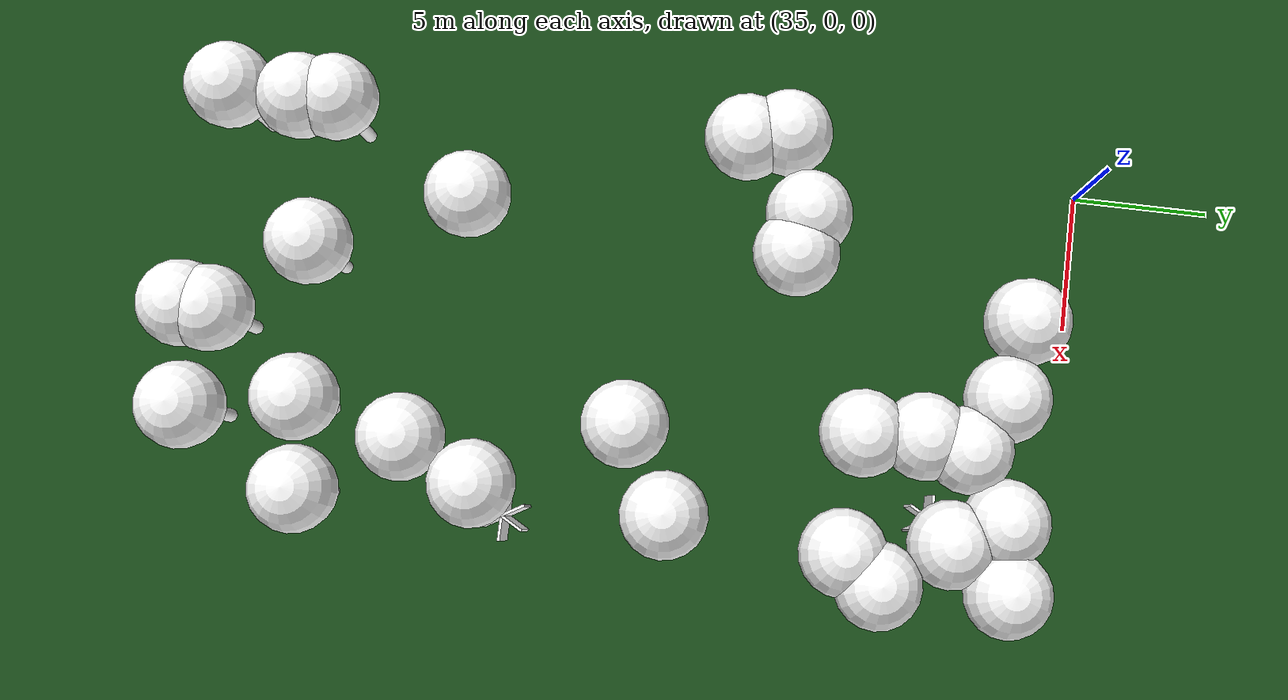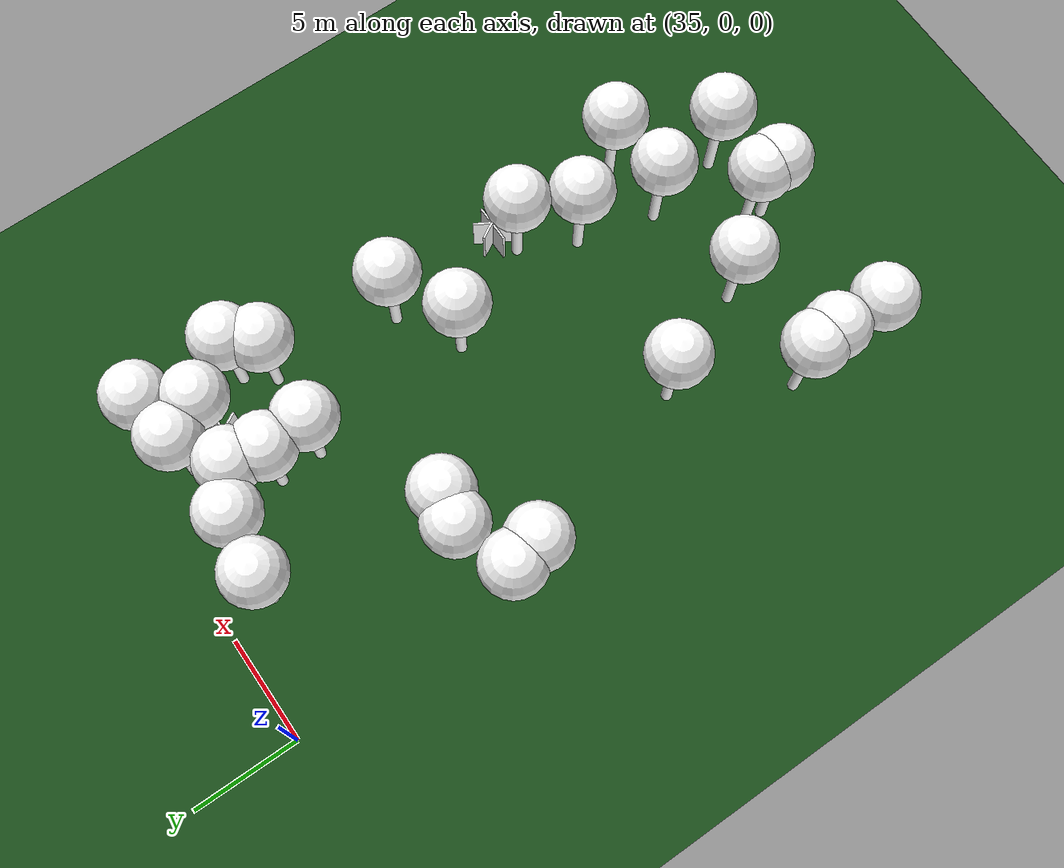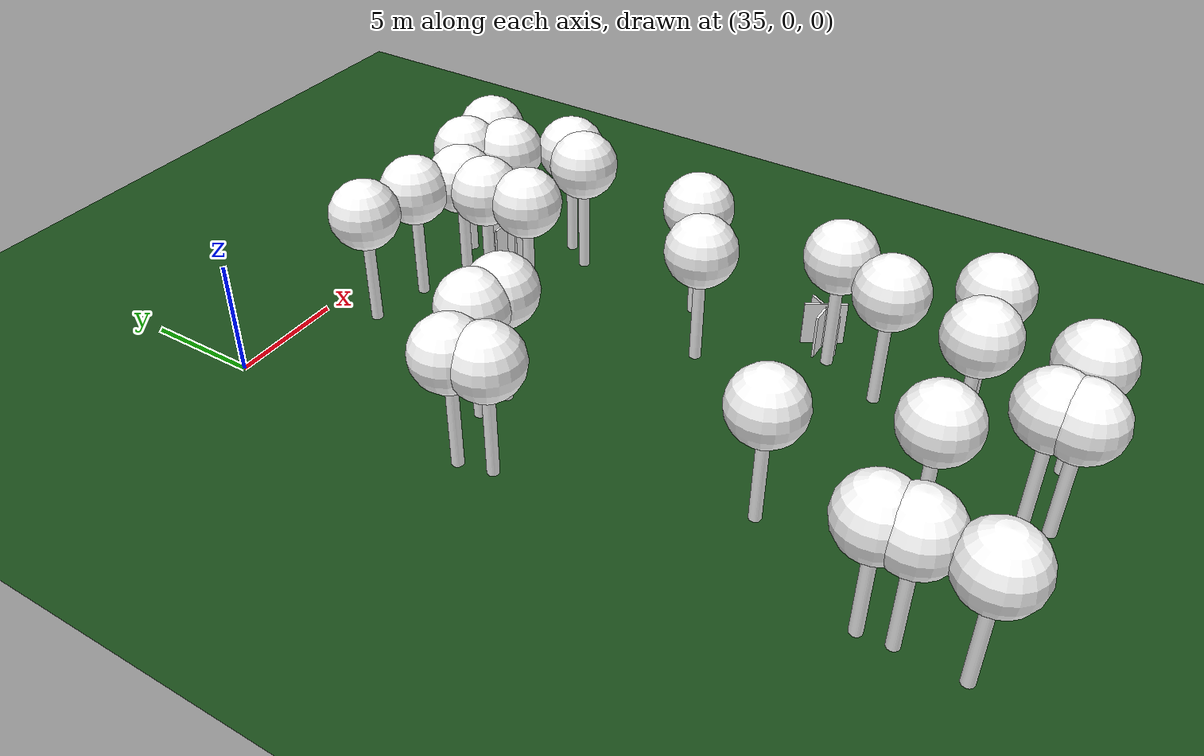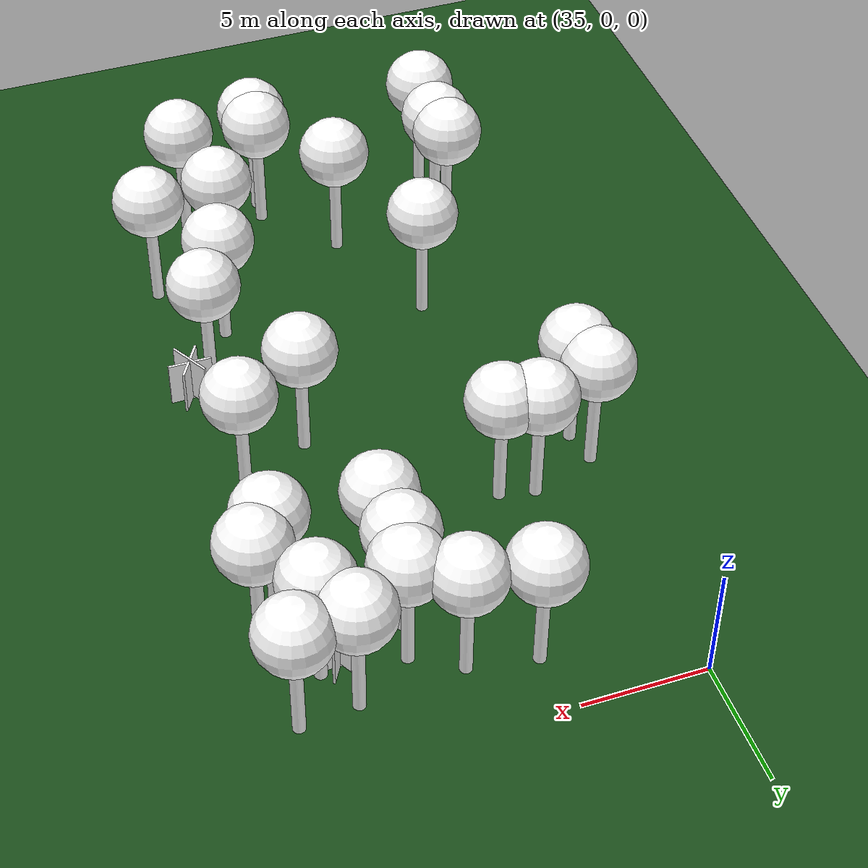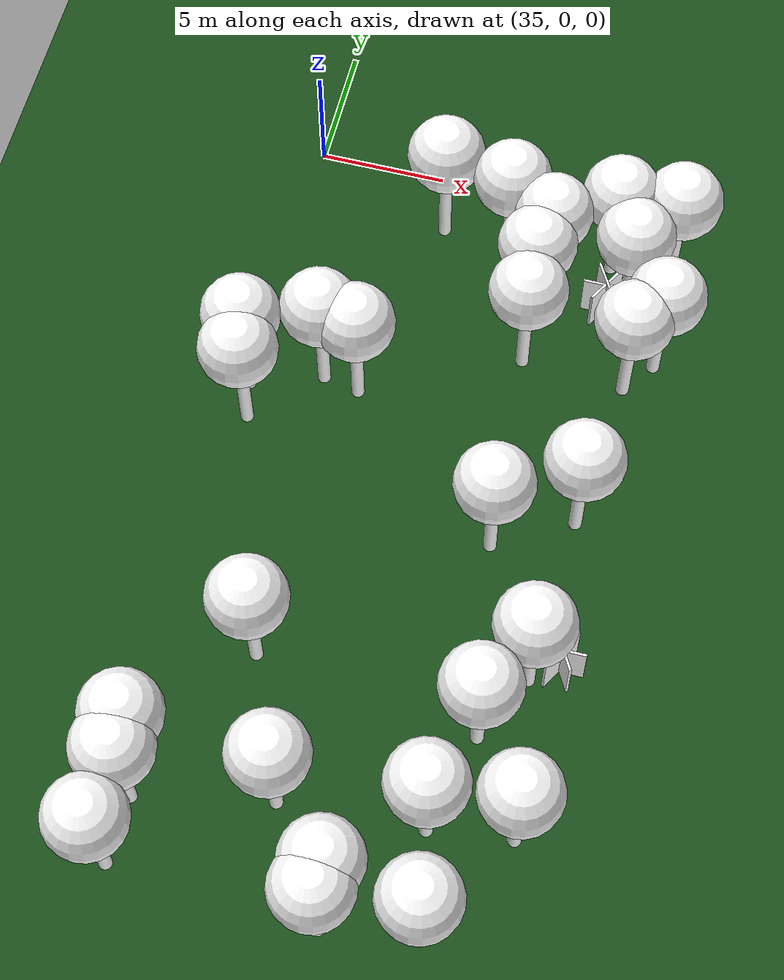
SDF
<sdf version="1.8">
 <world name="forest_world">
  <model name="fire_6">
   <pose>49.12 -19.65 1.00 0 0 0.00</pose>
   <static>true</static>
   <link name="fire_link">
    <visual name="fire_6_fire_main_0">
     <geometry><box><size>1.80 0.10 2.00</size></box></geometry>
     <material>
      <ambient>0.7 0.35 0.0 1</ambient>
      <diffuse>1 1 1 1</diffuse>
      <specular>0 0 0 1</specular>
      <emissive>0 0 0 1</emissive>
      <pbr>
       <metal><albedo_map>textures/fire.png</albedo_map><metalness>0.0</metalness><roughness>0.6</roughness></metal>
      </pbr>
     </material>
     <transparency>0.0</transparency>
     <cast_shadows>false</cast_shadows>
    </visual>
    <visual name="fire_6_fire_60_1">
     <pose>0.00 0.00 0.10 0 0 1.05</pose>
     <geometry><box><size>1.80 0.10 2.00</size></box></geometry>
     <material>
      <ambient>0.7 0.35 0.0 1</ambient>
      <diffuse>1 1 1 1</diffuse>
      <specular>0 0 0 1</specular>
      <emissive>0 0 0 1</emissive>
      <pbr>
       <metal><albedo_map>textures/fire.png</albedo_map><metalness>0.0</metalness><roughness>0.6</roughness></metal>
      </pbr>
     </material>
     <transparency>0.0</transparency>
     <cast_shadows>false</cast_shadows>
    </visual>
    <visual name="fire_6_fire_120_2">
     <pose>0.00 0.00 0.20 0 0 2.09</pose>
     <geometry><box><size>1.80 0.10 2.00</size></box></geometry>
     <material>
      <ambient>0.7 0.35 0.0 1</ambient>
      <diffuse>1 1 1 1</diffuse>
      <specular>0 0 0 1</specular>
      <emissive>0 0 0 1</emissive>
      <pbr>
       <metal><albedo_map>textures/fire.png</albedo_map><metalness>0.0</metalness><roughness>0.6</roughness></metal>
      </pbr>
     </material>
     <transparency>0.0</transparency>
     <cast_shadows>false</cast_shadows>
    </visual>
    <light type="point" name="fire_6_light_0">
     <pose>0.40 0.00 0.50 0 0 0</pose>
     <diffuse>1.0 0.7 0.3 1</diffuse>
     <specular>1.0 0.8 0.3 1</specular>
     <intensity>2</intensity>
     <attenuation>
      <range>2</range>
      <constant>0.1</constant>
      <linear>0.05</linear>
      <quadratic>0.02</quadratic>
     </attenuation>
     <cast_shadows>false</cast_shadows>
    </light>
    <light type="point" name="fire_6_light_1">
     <pose>-0.20 0.35 0.50 0 0 0</pose>
     <diffuse>1.0 0.7 0.3 1</diffuse>
     <specular>1.0 0.8 0.3 1</specular>
     <intensity>2</intensity>
     <attenuation>
      <range>2</range>
      <constant>0.1</constant>
      <linear>0.05</linear>
      <quadratic>0.02</quadratic>
     </attenuation>
     <cast_shadows>false</cast_shadows>
    </light>
    <light type="point" name="fire_6_light_2">
     <pose>-0.20 -0.35 0.50 0 0 0</pose>
     <diffuse>1.0 0.7 0.3 1</diffuse>
     <specular>1.0 0.8 0.3 1</specular>
     <intensity>2</intensity>
     <attenuation>
      <range>2</range>
      <constant>0.1</constant>
      <linear>0.05</linear>
      <quadratic>0.02</quadratic>
     </attenuation>
     <cast_shadows>false</cast_shadows>
    </light>
   </link>
   <plugin filename="libignition-gazebo-pose-publisher-system.so" name="ignition::gazebo::systems::PosePublisher">
    <frame_id>world</frame_id>
    <publish_link_pose>true</publish_link_pose>
    <use_pose_vector_msg>true</use_pose_vector_msg>
    <static_publisher>true</static_publisher>
    <static_update_frequency>1</static_update_frequency>
   </plugin>
  </model>
  <model name="fire_21">
   <pose>47.58 -4.49 1.00 0 0 0.00</pose>
   <static>true</static>
   <link name="fire_link">
    <visual name="fire_21_fire_main_0">
     <geometry><box><size>1.80 0.10 2.00</size></box></geometry>
     <material>
      <ambient>0.7 0.35 0.0 1</ambient>
      <diffuse>1 1 1 1</diffuse>
      <specular>0 0 0 1</specular>
      <emissive>0 0 0 1</emissive>
      <pbr>
       <metal><albedo_map>textures/fire.png</albedo_map><metalness>0.0</metalness><roughness>0.6</roughness></metal>
      </pbr>
     </material>
     <transparency>0.0</transparency>
     <cast_shadows>false</cast_shadows>
    </visual>
    <visual name="fire_21_fire_60_1">
     <pose>0.00 0.00 0.10 0 0 1.05</pose>
     <geometry><box><size>1.80 0.10 2.00</size></box></geometry>
     <material>
      <ambient>0.7 0.35 0.0 1</ambient>
      <diffuse>1 1 1 1</diffuse>
      <specular>0 0 0 1</specular>
      <emissive>0 0 0 1</emissive>
      <pbr>
       <metal><albedo_map>textures/fire.png</albedo_map><metalness>0.0</metalness><roughness>0.6</roughness></metal>
      </pbr>
     </material>
     <transparency>0.0</transparency>
     <cast_shadows>false</cast_shadows>
    </visual>
    <visual name="fire_21_fire_120_2">
     <pose>0.00 0.00 0.20 0 0 2.09</pose>
     <geometry><box><size>1.80 0.10 2.00</size></box></geometry>
     <material>
      <ambient>0.7 0.35 0.0 1</ambient>
      <diffuse>1 1 1 1</diffuse>
      <specular>0 0 0 1</specular>
      <emissive>0 0 0 1</emissive>
      <pbr>
       <metal><albedo_map>textures/fire.png</albedo_map><metalness>0.0</metalness><roughness>0.6</roughness></metal>
      </pbr>
     </material>
     <transparency>0.0</transparency>
     <cast_shadows>false</cast_shadows>
    </visual>
    <light type="point" name="fire_21_light_0">
     <pose>0.40 0.00 0.50 0 0 0</pose>
     <diffuse>1.0 0.7 0.3 1</diffuse>
     <specular>1.0 0.8 0.3 1</specular>
     <intensity>2</intensity>
     <attenuation>
      <range>2</range>
      <constant>0.1</constant>
      <linear>0.05</linear>
      <quadratic>0.02</quadratic>
     </attenuation>
     <cast_shadows>false</cast_shadows>
    </light>
    <light type="point" name="fire_21_light_1">
     <pose>-0.20 0.35 0.50 0 0 0</pose>
     <diffuse>1.0 0.7 0.3 1</diffuse>
     <specular>1.0 0.8 0.3 1</specular>
     <intensity>2</intensity>
     <attenuation>
      <range>2</range>
      <constant>0.1</constant>
      <linear>0.05</linear>
      <quadratic>0.02</quadratic>
     </attenuation>
     <cast_shadows>false</cast_shadows>
    </light>
    <light type="point" name="fire_21_light_2">
     <pose>-0.20 -0.35 0.50 0 0 0</pose>
     <diffuse>1.0 0.7 0.3 1</diffuse>
     <specular>1.0 0.8 0.3 1</specular>
     <intensity>2</intensity>
     <attenuation>
      <range>2</range>
      <constant>0.1</constant>
      <linear>0.05</linear>
      <quadratic>0.02</quadratic>
     </attenuation>
     <cast_shadows>false</cast_shadows>
    </light>
   </link>
   <plugin filename="libignition-gazebo-pose-publisher-system.so" name="ignition::gazebo::systems::PosePublisher">
    <frame_id>world</frame_id>
    <publish_link_pose>true</publish_link_pose>
    <use_pose_vector_msg>true</use_pose_vector_msg>
    <static_publisher>true</static_publisher>
    <static_update_frequency>1</static_update_frequency>
   </plugin>
  </model>
  <model name="tree_simple473">
   <static>1</static>
   <link name="link">
    <pose>0 0 0.1 0 -0 0</pose>
    <collision name="collision_trunk">
     <pose>0 0 2 0 -0 0</pose>
     <geometry><cylinder><radius>0.25</radius><length>4</length></cylinder></geometry>
    </collision>
    <collision name="collision_treetop">
     <pose>0 0 5.2 0 -0 0</pose>
     <geometry><sphere><radius>1.5</radius></sphere></geometry>
    </collision>
    <visual name="trunk">
     <pose>0 0 2 0 -0 0</pose>
     <geometry><cylinder><radius>0.25</radius><length>4</length></cylinder></geometry>
     <material>
      <ambient>0.5 0.5 0.5 1</ambient>
      <diffuse>1.0 1.0 1.0 1</diffuse>
      <specular>0.0 0.0 0.0 1</specular>
      <pbr>
       <metal>
        <albedo_map>../worlds/textures/tree_simple_trunk.jpg</albedo_map>
        <metalness>0.0</metalness>
        <roughness>0.8</roughness>
       </metal>
      </pbr>
     </material>
    </visual>
    <visual name="treetop">
     <pose>0 0 5.2 0 -0 0</pose>
     <geometry><sphere><radius>1.5</radius></sphere></geometry>
     <material>
      <ambient>0.5 0.5 0.5 1</ambient>
      <diffuse>1.0 1.0 1.0 1</diffuse>
      <specular>0.0 0.0 0.0 1</specular>
      <pbr>
       <metal>
        <albedo_map>../worlds/textures/tree_simple_treetop.jpg</albedo_map>
        <metalness>0.0</metalness>
        <roughness>0.9</roughness>
       </metal>
      </pbr>
     </material>
    </visual>
   </link>
   <pose>35.3600050295 -12.4568326028 0 0 -0 0</pose>
  </model>
  <model name="tree_simple461">
   <static>1</static>
   <link name="link">
    <pose>0 0 0.1 0 -0 0</pose>
    <collision name="collision_trunk">
     <pose>0 0 2 0 -0 0</pose>
     <geometry><cylinder><radius>0.25</radius><length>4</length></cylinder></geometry>
    </collision>
    <collision name="collision_treetop">
     <pose>0 0 5.2 0 -0 0</pose>
     <geometry><sphere><radius>1.5</radius></sphere></geometry>
    </collision>
    <visual name="trunk">
     <pose>0 0 2 0 -0 0</pose>
     <geometry><cylinder><radius>0.25</radius><length>4</length></cylinder></geometry>
     <material>
      <ambient>0.5 0.5 0.5 1</ambient>
      <diffuse>1.0 1.0 1.0 1</diffuse>
      <specular>0.0 0.0 0.0 1</specular>
      <pbr>
       <metal>
        <albedo_map>../worlds/textures/tree_simple_trunk.jpg</albedo_map>
        <metalness>0.0</metalness>
        <roughness>0.8</roughness>
       </metal>
      </pbr>
     </material>
    </visual>
    <visual name="treetop">
     <pose>0 0 5.2 0 -0 0</pose>
     <geometry><sphere><radius>1.5</radius></sphere></geometry>
     <material>
      <ambient>0.5 0.5 0.5 1</ambient>
      <diffuse>1.0 1.0 1.0 1</diffuse>
      <specular>0.0 0.0 0.0 1</specular>
      <pbr>
       <metal>
        <albedo_map>../worlds/textures/tree_simple_treetop.jpg</albedo_map>
        <metalness>0.0</metalness>
        <roughness>0.9</roughness>
       </metal>
      </pbr>
     </material>
    </visual>
   </link>
   <pose>48.4583895912 -13.8275705943 0 0 -0 0</pose>
  </model>
  <model name="tree_simple400">
   <static>1</static>
   <link name="link">
    <pose>0 0 0.1 0 -0 0</pose>
    <collision name="collision_trunk">
     <pose>0 0 2 0 -0 0</pose>
     <geometry><cylinder><radius>0.25</radius><length>4</length></cylinder></geometry>
    </collision>
    <collision name="collision_treetop">
     <pose>0 0 5.2 0 -0 0</pose>
     <geometry><sphere><radius>1.5</radius></sphere></geometry>
    </collision>
    <visual name="trunk">
     <pose>0 0 2 0 -0 0</pose>
     <geometry><cylinder><radius>0.25</radius><length>4</length></cylinder></geometry>
     <material>
      <ambient>0.5 0.5 0.5 1</ambient>
      <diffuse>1.0 1.0 1.0 1</diffuse>
      <specular>0.0 0.0 0.0 1</specular>
      <pbr>
       <metal>
        <albedo_map>../worlds/textures/tree_simple_trunk.jpg</albedo_map>
        <metalness>0.0</metalness>
        <roughness>0.8</roughness>
       </metal>
      </pbr>
     </material>
    </visual>
    <visual name="treetop">
     <pose>0 0 5.2 0 -0 0</pose>
     <geometry><sphere><radius>1.5</radius></sphere></geometry>
     <material>
      <ambient>0.5 0.5 0.5 1</ambient>
      <diffuse>1.0 1.0 1.0 1</diffuse>
      <specular>0.0 0.0 0.0 1</specular>
      <pbr>
       <metal>
        <albedo_map>../worlds/textures/tree_simple_treetop.jpg</albedo_map>
        <metalness>0.0</metalness>
        <roughness>0.9</roughness>
       </metal>
      </pbr>
     </material>
    </visual>
   </link>
   <pose>43.2651902792 -29.893141503 0 0 -0 0</pose>
  </model>
  <model name="tree_simple391">
   <static>1</static>
   <link name="link">
    <pose>0 0 0.1 0 -0 0</pose>
    <collision name="collision_trunk">
     <pose>0 0 2 0 -0 0</pose>
     <geometry><cylinder><radius>0.25</radius><length>4</length></cylinder></geometry>
    </collision>
    <collision name="collision_treetop">
     <pose>0 0 5.2 0 -0 0</pose>
     <geometry><sphere><radius>1.5</radius></sphere></geometry>
    </collision>
    <visual name="trunk">
     <pose>0 0 2 0 -0 0</pose>
     <geometry><cylinder><radius>0.25</radius><length>4</length></cylinder></geometry>
     <material>
      <ambient>0.5 0.5 0.5 1</ambient>
      <diffuse>1.0 1.0 1.0 1</diffuse>
      <specular>0.0 0.0 0.0 1</specular>
      <pbr>
       <metal>
        <albedo_map>../worlds/textures/tree_simple_trunk.jpg</albedo_map>
        <metalness>0.0</metalness>
        <roughness>0.8</roughness>
       </metal>
      </pbr>
     </material>
    </visual>
    <visual name="treetop">
     <pose>0 0 5.2 0 -0 0</pose>
     <geometry><sphere><radius>1.5</radius></sphere></geometry>
     <material>
      <ambient>0.5 0.5 0.5 1</ambient>
      <diffuse>1.0 1.0 1.0 1</diffuse>
      <specular>0.0 0.0 0.0 1</specular>
      <pbr>
       <metal>
        <albedo_map>../worlds/textures/tree_simple_treetop.jpg</albedo_map>
        <metalness>0.0</metalness>
        <roughness>0.9</roughness>
       </metal>
      </pbr>
     </material>
    </visual>
   </link>
   <pose>35.0521422103 -11.0450283788 0 0 -0 0</pose>
  </model>
  <model name="tree_simple380">
   <static>1</static>
   <link name="link">
    <pose>0 0 0.1 0 -0 0</pose>
    <collision name="collision_trunk">
     <pose>0 0 2 0 -0 0</pose>
     <geometry><cylinder><radius>0.25</radius><length>4</length></cylinder></geometry>
    </collision>
    <collision name="collision_treetop">
     <pose>0 0 5.2 0 -0 0</pose>
     <geometry><sphere><radius>1.5</radius></sphere></geometry>
    </collision>
    <visual name="trunk">
     <pose>0 0 2 0 -0 0</pose>
     <geometry><cylinder><radius>0.25</radius><length>4</length></cylinder></geometry>
     <material>
      <ambient>0.5 0.5 0.5 1</ambient>
      <diffuse>1.0 1.0 1.0 1</diffuse>
      <specular>0.0 0.0 0.0 1</specular>
      <pbr>
       <metal>
        <albedo_map>../worlds/textures/tree_simple_trunk.jpg</albedo_map>
        <metalness>0.0</metalness>
        <roughness>0.8</roughness>
       </metal>
      </pbr>
     </material>
    </visual>
    <visual name="treetop">
     <pose>0 0 5.2 0 -0 0</pose>
     <geometry><sphere><radius>1.5</radius></sphere></geometry>
     <material>
      <ambient>0.5 0.5 0.5 1</ambient>
      <diffuse>1.0 1.0 1.0 1</diffuse>
      <specular>0.0 0.0 0.0 1</specular>
      <pbr>
       <metal>
        <albedo_map>../worlds/textures/tree_simple_treetop.jpg</albedo_map>
        <metalness>0.0</metalness>
        <roughness>0.9</roughness>
       </metal>
      </pbr>
     </material>
    </visual>
   </link>
   <pose>49.0222625073 -7.79616728684 0 0 -0 0</pose>
  </model>
  <model name="tree_simple379">
   <static>1</static>
   <link name="link">
    <pose>0 0 0.1 0 -0 0</pose>
    <collision name="collision_trunk">
     <pose>0 0 2 0 -0 0</pose>
     <geometry><cylinder><radius>0.25</radius><length>4</length></cylinder></geometry>
    </collision>
    <collision name="collision_treetop">
     <pose>0 0 5.2 0 -0 0</pose>
     <geometry><sphere><radius>1.5</radius></sphere></geometry>
    </collision>
    <visual name="trunk">
     <pose>0 0 2 0 -0 0</pose>
     <geometry><cylinder><radius>0.25</radius><length>4</length></cylinder></geometry>
     <material>
      <ambient>0.5 0.5 0.5 1</ambient>
      <diffuse>1.0 1.0 1.0 1</diffuse>
      <specular>0.0 0.0 0.0 1</specular>
      <pbr>
       <metal>
        <albedo_map>../worlds/textures/tree_simple_trunk.jpg</albedo_map>
        <metalness>0.0</metalness>
        <roughness>0.8</roughness>
       </metal>
      </pbr>
     </material>
    </visual>
    <visual name="treetop">
     <pose>0 0 5.2 0 -0 0</pose>
     <geometry><sphere><radius>1.5</radius></sphere></geometry>
     <material>
      <ambient>0.5 0.5 0.5 1</ambient>
      <diffuse>1.0 1.0 1.0 1</diffuse>
      <specular>0.0 0.0 0.0 1</specular>
      <pbr>
       <metal>
        <albedo_map>../worlds/textures/tree_simple_treetop.jpg</albedo_map>
        <metalness>0.0</metalness>
        <roughness>0.9</roughness>
       </metal>
      </pbr>
     </material>
    </visual>
   </link>
   <pose>35.6338366469 -27.9469397224 0 0 -0 0</pose>
  </model>
  <model name="tree_simple374">
   <static>1</static>
   <link name="link">
    <pose>0 0 0.1 0 -0 0</pose>
    <collision name="collision_trunk">
     <pose>0 0 2 0 -0 0</pose>
     <geometry><cylinder><radius>0.25</radius><length>4</length></cylinder></geometry>
    </collision>
    <collision name="collision_treetop">
     <pose>0 0 5.2 0 -0 0</pose>
     <geometry><sphere><radius>1.5</radius></sphere></geometry>
    </collision>
    <visual name="trunk">
     <pose>0 0 2 0 -0 0</pose>
     <geometry><cylinder><radius>0.25</radius><length>4</length></cylinder></geometry>
     <material>
      <ambient>0.5 0.5 0.5 1</ambient>
      <diffuse>1.0 1.0 1.0 1</diffuse>
      <specular>0.0 0.0 0.0 1</specular>
      <pbr>
       <metal>
        <albedo_map>../worlds/textures/tree_simple_trunk.jpg</albedo_map>
        <metalness>0.0</metalness>
        <roughness>0.8</roughness>
       </metal>
      </pbr>
     </material>
    </visual>
    <visual name="treetop">
     <pose>0 0 5.2 0 -0 0</pose>
     <geometry><sphere><radius>1.5</radius></sphere></geometry>
     <material>
      <ambient>0.5 0.5 0.5 1</ambient>
      <diffuse>1.0 1.0 1.0 1</diffuse>
      <specular>0.0 0.0 0.0 1</specular>
      <pbr>
       <metal>
        <albedo_map>../worlds/textures/tree_simple_treetop.jpg</albedo_map>
        <metalness>0.0</metalness>
        <roughness>0.9</roughness>
       </metal>
      </pbr>
     </material>
    </visual>
   </link>
   <pose>45.5880490305 -15.4743351493 0 0 -0 0</pose>
  </model>
  <model name="tree_simple361">
   <static>1</static>
   <link name="link">
    <pose>0 0 0.1 0 -0 0</pose>
    <collision name="collision_trunk">
     <pose>0 0 2 0 -0 0</pose>
     <geometry><cylinder><radius>0.25</radius><length>4</length></cylinder></geometry>
    </collision>
    <collision name="collision_treetop">
     <pose>0 0 5.2 0 -0 0</pose>
     <geometry><sphere><radius>1.5</radius></sphere></geometry>
    </collision>
    <visual name="trunk">
     <pose>0 0 2 0 -0 0</pose>
     <geometry><cylinder><radius>0.25</radius><length>4</length></cylinder></geometry>
     <material>
      <ambient>0.5 0.5 0.5 1</ambient>
      <diffuse>1.0 1.0 1.0 1</diffuse>
      <specular>0.0 0.0 0.0 1</specular>
      <pbr>
       <metal>
        <albedo_map>../worlds/textures/tree_simple_trunk.jpg</albedo_map>
        <metalness>0.0</metalness>
        <roughness>0.8</roughness>
       </metal>
      </pbr>
     </material>
    </visual>
    <visual name="treetop">
     <pose>0 0 5.2 0 -0 0</pose>
     <geometry><sphere><radius>1.5</radius></sphere></geometry>
     <material>
      <ambient>0.5 0.5 0.5 1</ambient>
      <diffuse>1.0 1.0 1.0 1</diffuse>
      <specular>0.0 0.0 0.0 1</specular>
      <pbr>
       <metal>
        <albedo_map>../worlds/textures/tree_simple_treetop.jpg</albedo_map>
        <metalness>0.0</metalness>
        <roughness>0.9</roughness>
       </metal>
      </pbr>
     </material>
    </visual>
   </link>
   <pose>35.5366757962 -26.7239082098 0 0 -0 0</pose>
  </model>
  <model name="tree_simple352">
   <static>1</static>
   <link name="link">
    <pose>0 0 0.1 0 -0 0</pose>
    <collision name="collision_trunk">
     <pose>0 0 2 0 -0 0</pose>
     <geometry><cylinder><radius>0.25</radius><length>4</length></cylinder></geometry>
    </collision>
    <collision name="collision_treetop">
     <pose>0 0 5.2 0 -0 0</pose>
     <geometry><sphere><radius>1.5</radius></sphere></geometry>
    </collision>
    <visual name="trunk">
     <pose>0 0 2 0 -0 0</pose>
     <geometry><cylinder><radius>0.25</radius><length>4</length></cylinder></geometry>
     <material>
      <ambient>0.5 0.5 0.5 1</ambient>
      <diffuse>1.0 1.0 1.0 1</diffuse>
      <specular>0.0 0.0 0.0 1</specular>
      <pbr>
       <metal>
        <albedo_map>../worlds/textures/tree_simple_trunk.jpg</albedo_map>
        <metalness>0.0</metalness>
        <roughness>0.8</roughness>
       </metal>
      </pbr>
     </material>
    </visual>
    <visual name="treetop">
     <pose>0 0 5.2 0 -0 0</pose>
     <geometry><sphere><radius>1.5</radius></sphere></geometry>
     <material>
      <ambient>0.5 0.5 0.5 1</ambient>
      <diffuse>1.0 1.0 1.0 1</diffuse>
      <specular>0.0 0.0 0.0 1</specular>
      <pbr>
       <metal>
        <albedo_map>../worlds/textures/tree_simple_treetop.jpg</albedo_map>
        <metalness>0.0</metalness>
        <roughness>0.9</roughness>
       </metal>
      </pbr>
     </material>
    </visual>
   </link>
   <pose>37.7714253308 -10.085576638 0 0 -0 0</pose>
  </model>
  <model name="tree_simple330">
   <static>1</static>
   <link name="link">
    <pose>0 0 0.1 0 -0 0</pose>
    <collision name="collision_trunk">
     <pose>0 0 2 0 -0 0</pose>
     <geometry><cylinder><radius>0.25</radius><length>4</length></cylinder></geometry>
    </collision>
    <collision name="collision_treetop">
     <pose>0 0 5.2 0 -0 0</pose>
     <geometry><sphere><radius>1.5</radius></sphere></geometry>
    </collision>
    <visual name="trunk">
     <pose>0 0 2 0 -0 0</pose>
     <geometry><cylinder><radius>0.25</radius><length>4</length></cylinder></geometry>
     <material>
      <ambient>0.5 0.5 0.5 1</ambient>
      <diffuse>1.0 1.0 1.0 1</diffuse>
      <specular>0.0 0.0 0.0 1</specular>
      <pbr>
       <metal>
        <albedo_map>../worlds/textures/tree_simple_trunk.jpg</albedo_map>
        <metalness>0.0</metalness>
        <roughness>0.8</roughness>
       </metal>
      </pbr>
     </material>
    </visual>
    <visual name="treetop">
     <pose>0 0 5.2 0 -0 0</pose>
     <geometry><sphere><radius>1.5</radius></sphere></geometry>
     <material>
      <ambient>0.5 0.5 0.5 1</ambient>
      <diffuse>1.0 1.0 1.0 1</diffuse>
      <specular>0.0 0.0 0.0 1</specular>
      <pbr>
       <metal>
        <albedo_map>../worlds/textures/tree_simple_treetop.jpg</albedo_map>
        <metalness>0.0</metalness>
        <roughness>0.9</roughness>
       </metal>
      </pbr>
     </material>
    </visual>
   </link>
   <pose>46.6176543064 -30.3534647409 0 0 -0 0</pose>
  </model>
  <model name="tree_simple278">
   <static>1</static>
   <link name="link">
    <pose>0 0 0.1 0 -0 0</pose>
    <collision name="collision_trunk">
     <pose>0 0 2 0 -0 0</pose>
     <geometry><cylinder><radius>0.25</radius><length>4</length></cylinder></geometry>
    </collision>
    <collision name="collision_treetop">
     <pose>0 0 5.2 0 -0 0</pose>
     <geometry><sphere><radius>1.5</radius></sphere></geometry>
    </collision>
    <visual name="trunk">
     <pose>0 0 2 0 -0 0</pose>
     <geometry><cylinder><radius>0.25</radius><length>4</length></cylinder></geometry>
     <material>
      <ambient>0.5 0.5 0.5 1</ambient>
      <diffuse>1.0 1.0 1.0 1</diffuse>
      <specular>0.0 0.0 0.0 1</specular>
      <pbr>
       <metal>
        <albedo_map>../worlds/textures/tree_simple_trunk.jpg</albedo_map>
        <metalness>0.0</metalness>
        <roughness>0.8</roughness>
       </metal>
      </pbr>
     </material>
    </visual>
    <visual name="treetop">
     <pose>0 0 5.2 0 -0 0</pose>
     <geometry><sphere><radius>1.5</radius></sphere></geometry>
     <material>
      <ambient>0.5 0.5 0.5 1</ambient>
      <diffuse>1.0 1.0 1.0 1</diffuse>
      <specular>0.0 0.0 0.0 1</specular>
      <pbr>
       <metal>
        <albedo_map>../worlds/textures/tree_simple_treetop.jpg</albedo_map>
        <metalness>0.0</metalness>
        <roughness>0.9</roughness>
       </metal>
      </pbr>
     </material>
    </visual>
   </link>
   <pose>38.4116061074 -21.7404675264 0 0 -0 0</pose>
  </model>
  <model name="tree_simple263">
   <static>1</static>
   <link name="link">
    <pose>0 0 0.1 0 -0 0</pose>
    <collision name="collision_trunk">
     <pose>0 0 2 0 -0 0</pose>
     <geometry><cylinder><radius>0.25</radius><length>4</length></cylinder></geometry>
    </collision>
    <collision name="collision_treetop">
     <pose>0 0 5.2 0 -0 0</pose>
     <geometry><sphere><radius>1.5</radius></sphere></geometry>
    </collision>
    <visual name="trunk">
     <pose>0 0 2 0 -0 0</pose>
     <geometry><cylinder><radius>0.25</radius><length>4</length></cylinder></geometry>
     <material>
      <ambient>0.5 0.5 0.5 1</ambient>
      <diffuse>1.0 1.0 1.0 1</diffuse>
      <specular>0.0 0.0 0.0 1</specular>
      <pbr>
       <metal>
        <albedo_map>../worlds/textures/tree_simple_trunk.jpg</albedo_map>
        <metalness>0.0</metalness>
        <roughness>0.8</roughness>
       </metal>
      </pbr>
     </material>
    </visual>
    <visual name="treetop">
     <pose>0 0 5.2 0 -0 0</pose>
     <geometry><sphere><radius>1.5</radius></sphere></geometry>
     <material>
      <ambient>0.5 0.5 0.5 1</ambient>
      <diffuse>1.0 1.0 1.0 1</diffuse>
      <specular>0.0 0.0 0.0 1</specular>
      <pbr>
       <metal>
        <albedo_map>../worlds/textures/tree_simple_treetop.jpg</albedo_map>
        <metalness>0.0</metalness>
        <roughness>0.9</roughness>
       </metal>
      </pbr>
     </material>
    </visual>
   </link>
   <pose>40.6294575453 -26.8945764261 0 0 -0 0</pose>
  </model>
  <model name="tree_simple244">
   <static>1</static>
   <link name="link">
    <pose>0 0 0.1 0 -0 0</pose>
    <collision name="collision_trunk">
     <pose>0 0 2 0 -0 0</pose>
     <geometry><cylinder><radius>0.25</radius><length>4</length></cylinder></geometry>
    </collision>
    <collision name="collision_treetop">
     <pose>0 0 5.2 0 -0 0</pose>
     <geometry><sphere><radius>1.5</radius></sphere></geometry>
    </collision>
    <visual name="trunk">
     <pose>0 0 2 0 -0 0</pose>
     <geometry><cylinder><radius>0.25</radius><length>4</length></cylinder></geometry>
     <material>
      <ambient>0.5 0.5 0.5 1</ambient>
      <diffuse>1.0 1.0 1.0 1</diffuse>
      <specular>0.0 0.0 0.0 1</specular>
      <pbr>
       <metal>
        <albedo_map>../worlds/textures/tree_simple_trunk.jpg</albedo_map>
        <metalness>0.0</metalness>
        <roughness>0.8</roughness>
       </metal>
      </pbr>
     </material>
    </visual>
    <visual name="treetop">
     <pose>0 0 5.2 0 -0 0</pose>
     <geometry><sphere><radius>1.5</radius></sphere></geometry>
     <material>
      <ambient>0.5 0.5 0.5 1</ambient>
      <diffuse>1.0 1.0 1.0 1</diffuse>
      <specular>0.0 0.0 0.0 1</specular>
      <pbr>
       <metal>
        <albedo_map>../worlds/textures/tree_simple_treetop.jpg</albedo_map>
        <metalness>0.0</metalness>
        <roughness>0.9</roughness>
       </metal>
      </pbr>
     </material>
    </visual>
   </link>
   <pose>45.1720023685 -3.9344800414 0 0 -0 0</pose>
  </model>
  <model name="tree_simple243">
   <static>1</static>
   <link name="link">
    <pose>0 0 0.1 0 -0 0</pose>
    <collision name="collision_trunk">
     <pose>0 0 2 0 -0 0</pose>
     <geometry><cylinder><radius>0.25</radius><length>4</length></cylinder></geometry>
    </collision>
    <collision name="collision_treetop">
     <pose>0 0 5.2 0 -0 0</pose>
     <geometry><sphere><radius>1.5</radius></sphere></geometry>
    </collision>
    <visual name="trunk">
     <pose>0 0 2 0 -0 0</pose>
     <geometry><cylinder><radius>0.25</radius><length>4</length></cylinder></geometry>
     <material>
      <ambient>0.5 0.5 0.5 1</ambient>
      <diffuse>1.0 1.0 1.0 1</diffuse>
      <specular>0.0 0.0 0.0 1</specular>
      <pbr>
       <metal>
        <albedo_map>../worlds/textures/tree_simple_trunk.jpg</albedo_map>
        <metalness>0.0</metalness>
        <roughness>0.8</roughness>
       </metal>
      </pbr>
     </material>
    </visual>
    <visual name="treetop">
     <pose>0 0 5.2 0 -0 0</pose>
     <geometry><sphere><radius>1.5</radius></sphere></geometry>
     <material>
      <ambient>0.5 0.5 0.5 1</ambient>
      <diffuse>1.0 1.0 1.0 1</diffuse>
      <specular>0.0 0.0 0.0 1</specular>
      <pbr>
       <metal>
        <albedo_map>../worlds/textures/tree_simple_treetop.jpg</albedo_map>
        <metalness>0.0</metalness>
        <roughness>0.9</roughness>
       </metal>
      </pbr>
     </material>
    </visual>
   </link>
   <pose>48.9656449897 -26.1871742827 0 0 -0 0</pose>
  </model>
  <model name="tree_simple235">
   <static>1</static>
   <link name="link">
    <pose>0 0 0.1 0 -0 0</pose>
    <collision name="collision_trunk">
     <pose>0 0 2 0 -0 0</pose>
     <geometry><cylinder><radius>0.25</radius><length>4</length></cylinder></geometry>
    </collision>
    <collision name="collision_treetop">
     <pose>0 0 5.2 0 -0 0</pose>
     <geometry><sphere><radius>1.5</radius></sphere></geometry>
    </collision>
    <visual name="trunk">
     <pose>0 0 2 0 -0 0</pose>
     <geometry><cylinder><radius>0.25</radius><length>4</length></cylinder></geometry>
     <material>
      <ambient>0.5 0.5 0.5 1</ambient>
      <diffuse>1.0 1.0 1.0 1</diffuse>
      <specular>0.0 0.0 0.0 1</specular>
      <pbr>
       <metal>
        <albedo_map>../worlds/textures/tree_simple_trunk.jpg</albedo_map>
        <metalness>0.0</metalness>
        <roughness>0.8</roughness>
       </metal>
      </pbr>
     </material>
    </visual>
    <visual name="treetop">
     <pose>0 0 5.2 0 -0 0</pose>
     <geometry><sphere><radius>1.5</radius></sphere></geometry>
     <material>
      <ambient>0.5 0.5 0.5 1</ambient>
      <diffuse>1.0 1.0 1.0 1</diffuse>
      <specular>0.0 0.0 0.0 1</specular>
      <pbr>
       <metal>
        <albedo_map>../worlds/textures/tree_simple_treetop.jpg</albedo_map>
        <metalness>0.0</metalness>
        <roughness>0.9</roughness>
       </metal>
      </pbr>
     </material>
    </visual>
   </link>
   <pose>47.4649473564 -2.51877980815 0 0 -0 0</pose>
  </model>
  <model name="tree_simple217">
   <static>1</static>
   <link name="link">
    <pose>0 0 0.1 0 -0 0</pose>
    <collision name="collision_trunk">
     <pose>0 0 2 0 -0 0</pose>
     <geometry><cylinder><radius>0.25</radius><length>4</length></cylinder></geometry>
    </collision>
    <collision name="collision_treetop">
     <pose>0 0 5.2 0 -0 0</pose>
     <geometry><sphere><radius>1.5</radius></sphere></geometry>
    </collision>
    <visual name="trunk">
     <pose>0 0 2 0 -0 0</pose>
     <geometry><cylinder><radius>0.25</radius><length>4</length></cylinder></geometry>
     <material>
      <ambient>0.5 0.5 0.5 1</ambient>
      <diffuse>1.0 1.0 1.0 1</diffuse>
      <specular>0.0 0.0 0.0 1</specular>
      <pbr>
       <metal>
        <albedo_map>../worlds/textures/tree_simple_trunk.jpg</albedo_map>
        <metalness>0.0</metalness>
        <roughness>0.8</roughness>
       </metal>
      </pbr>
     </material>
    </visual>
    <visual name="treetop">
     <pose>0 0 5.2 0 -0 0</pose>
     <geometry><sphere><radius>1.5</radius></sphere></geometry>
     <material>
      <ambient>0.5 0.5 0.5 1</ambient>
      <diffuse>1.0 1.0 1.0 1</diffuse>
      <specular>0.0 0.0 0.0 1</specular>
      <pbr>
       <metal>
        <albedo_map>../worlds/textures/tree_simple_treetop.jpg</albedo_map>
        <metalness>0.0</metalness>
        <roughness>0.9</roughness>
       </metal>
      </pbr>
     </material>
    </visual>
   </link>
   <pose>49.7701486167 -2.25839681325 0 0 -0 0</pose>
  </model>
  <model name="tree_simple210">
   <static>1</static>
   <link name="link">
    <pose>0 0 0.1 0 -0 0</pose>
    <collision name="collision_trunk">
     <pose>0 0 2 0 -0 0</pose>
     <geometry><cylinder><radius>0.25</radius><length>4</length></cylinder></geometry>
    </collision>
    <collision name="collision_treetop">
     <pose>0 0 5.2 0 -0 0</pose>
     <geometry><sphere><radius>1.5</radius></sphere></geometry>
    </collision>
    <visual name="trunk">
     <pose>0 0 2 0 -0 0</pose>
     <geometry><cylinder><radius>0.25</radius><length>4</length></cylinder></geometry>
     <material>
      <ambient>0.5 0.5 0.5 1</ambient>
      <diffuse>1.0 1.0 1.0 1</diffuse>
      <specular>0.0 0.0 0.0 1</specular>
      <pbr>
       <metal>
        <albedo_map>../worlds/textures/tree_simple_trunk.jpg</albedo_map>
        <metalness>0.0</metalness>
        <roughness>0.8</roughness>
       </metal>
      </pbr>
     </material>
    </visual>
    <visual name="treetop">
     <pose>0 0 5.2 0 -0 0</pose>
     <geometry><sphere><radius>1.5</radius></sphere></geometry>
     <material>
      <ambient>0.5 0.5 0.5 1</ambient>
      <diffuse>1.0 1.0 1.0 1</diffuse>
      <specular>0.0 0.0 0.0 1</specular>
      <pbr>
       <metal>
        <albedo_map>../worlds/textures/tree_simple_treetop.jpg</albedo_map>
        <metalness>0.0</metalness>
        <roughness>0.9</roughness>
       </metal>
      </pbr>
     </material>
    </visual>
   </link>
   <pose>49.9611404215 -6.54237160605 0 0 -0 0</pose>
  </model>
  <model name="tree_simple206">
   <static>1</static>
   <link name="link">
    <pose>0 0 0.1 0 -0 0</pose>
    <collision name="collision_trunk">
     <pose>0 0 2 0 -0 0</pose>
     <geometry><cylinder><radius>0.25</radius><length>4</length></cylinder></geometry>
    </collision>
    <collision name="collision_treetop">
     <pose>0 0 5.2 0 -0 0</pose>
     <geometry><sphere><radius>1.5</radius></sphere></geometry>
    </collision>
    <visual name="trunk">
     <pose>0 0 2 0 -0 0</pose>
     <geometry><cylinder><radius>0.25</radius><length>4</length></cylinder></geometry>
     <material>
      <ambient>0.5 0.5 0.5 1</ambient>
      <diffuse>1.0 1.0 1.0 1</diffuse>
      <specular>0.0 0.0 0.0 1</specular>
      <pbr>
       <metal>
        <albedo_map>../worlds/textures/tree_simple_trunk.jpg</albedo_map>
        <metalness>0.0</metalness>
        <roughness>0.8</roughness>
       </metal>
      </pbr>
     </material>
    </visual>
    <visual name="treetop">
     <pose>0 0 5.2 0 -0 0</pose>
     <geometry><sphere><radius>1.5</radius></sphere></geometry>
     <material>
      <ambient>0.5 0.5 0.5 1</ambient>
      <diffuse>1.0 1.0 1.0 1</diffuse>
      <specular>0.0 0.0 0.0 1</specular>
      <pbr>
       <metal>
        <albedo_map>../worlds/textures/tree_simple_treetop.jpg</albedo_map>
        <metalness>0.0</metalness>
        <roughness>0.9</roughness>
       </metal>
      </pbr>
     </material>
    </visual>
   </link>
   <pose>46.8540816615 -22.8682209639 0 0 -0 0</pose>
  </model>
  <model name="tree_simple204">
   <static>1</static>
   <link name="link">
    <pose>0 0 0.1 0 -0 0</pose>
    <collision name="collision_trunk">
     <pose>0 0 2 0 -0 0</pose>
     <geometry><cylinder><radius>0.25</radius><length>4</length></cylinder></geometry>
    </collision>
    <collision name="collision_treetop">
     <pose>0 0 5.2 0 -0 0</pose>
     <geometry><sphere><radius>1.5</radius></sphere></geometry>
    </collision>
    <visual name="trunk">
     <pose>0 0 2 0 -0 0</pose>
     <geometry><cylinder><radius>0.25</radius><length>4</length></cylinder></geometry>
     <material>
      <ambient>0.5 0.5 0.5 1</ambient>
      <diffuse>1.0 1.0 1.0 1</diffuse>
      <specular>0.0 0.0 0.0 1</specular>
      <pbr>
       <metal>
        <albedo_map>../worlds/textures/tree_simple_trunk.jpg</albedo_map>
        <metalness>0.0</metalness>
        <roughness>0.8</roughness>
       </metal>
      </pbr>
     </material>
    </visual>
    <visual name="treetop">
     <pose>0 0 5.2 0 -0 0</pose>
     <geometry><sphere><radius>1.5</radius></sphere></geometry>
     <material>
      <ambient>0.5 0.5 0.5 1</ambient>
      <diffuse>1.0 1.0 1.0 1</diffuse>
      <specular>0.0 0.0 0.0 1</specular>
      <pbr>
       <metal>
        <albedo_map>../worlds/textures/tree_simple_treetop.jpg</albedo_map>
        <metalness>0.0</metalness>
        <roughness>0.9</roughness>
       </metal>
      </pbr>
     </material>
    </visual>
   </link>
   <pose>40.6572947186 -2.37352514754 0 0 -0 0</pose>
  </model>
  <model name="tree_simple203">
   <static>1</static>
   <link name="link">
    <pose>0 0 0.1 0 -0 0</pose>
    <collision name="collision_trunk">
     <pose>0 0 2 0 -0 0</pose>
     <geometry><cylinder><radius>0.25</radius><length>4</length></cylinder></geometry>
    </collision>
    <collision name="collision_treetop">
     <pose>0 0 5.2 0 -0 0</pose>
     <geometry><sphere><radius>1.5</radius></sphere></geometry>
    </collision>
    <visual name="trunk">
     <pose>0 0 2 0 -0 0</pose>
     <geometry><cylinder><radius>0.25</radius><length>4</length></cylinder></geometry>
     <material>
      <ambient>0.5 0.5 0.5 1</ambient>
      <diffuse>1.0 1.0 1.0 1</diffuse>
      <specular>0.0 0.0 0.0 1</specular>
      <pbr>
       <metal>
        <albedo_map>../worlds/textures/tree_simple_trunk.jpg</albedo_map>
        <metalness>0.0</metalness>
        <roughness>0.8</roughness>
       </metal>
      </pbr>
     </material>
    </visual>
    <visual name="treetop">
     <pose>0 0 5.2 0 -0 0</pose>
     <geometry><sphere><radius>1.5</radius></sphere></geometry>
     <material>
      <ambient>0.5 0.5 0.5 1</ambient>
      <diffuse>1.0 1.0 1.0 1</diffuse>
      <specular>0.0 0.0 0.0 1</specular>
      <pbr>
       <metal>
        <albedo_map>../worlds/textures/tree_simple_treetop.jpg</albedo_map>
        <metalness>0.0</metalness>
        <roughness>0.9</roughness>
       </metal>
      </pbr>
     </material>
    </visual>
   </link>
   <pose>48.3599333119 -4.25982043144 0 0 -0 0</pose>
  </model>
  <model name="tree_simple192">
   <static>1</static>
   <link name="link">
    <pose>0 0 0.1 0 -0 0</pose>
    <collision name="collision_trunk">
     <pose>0 0 2 0 -0 0</pose>
     <geometry><cylinder><radius>0.25</radius><length>4</length></cylinder></geometry>
    </collision>
    <collision name="collision_treetop">
     <pose>0 0 5.2 0 -0 0</pose>
     <geometry><sphere><radius>1.5</radius></sphere></geometry>
    </collision>
    <visual name="trunk">
     <pose>0 0 2 0 -0 0</pose>
     <geometry><cylinder><radius>0.25</radius><length>4</length></cylinder></geometry>
     <material>
      <ambient>0.5 0.5 0.5 1</ambient>
      <diffuse>1.0 1.0 1.0 1</diffuse>
      <specular>0.0 0.0 0.0 1</specular>
      <pbr>
       <metal>
        <albedo_map>../worlds/textures/tree_simple_trunk.jpg</albedo_map>
        <metalness>0.0</metalness>
        <roughness>0.8</roughness>
       </metal>
      </pbr>
     </material>
    </visual>
    <visual name="treetop">
     <pose>0 0 5.2 0 -0 0</pose>
     <geometry><sphere><radius>1.5</radius></sphere></geometry>
     <material>
      <ambient>0.5 0.5 0.5 1</ambient>
      <diffuse>1.0 1.0 1.0 1</diffuse>
      <specular>0.0 0.0 0.0 1</specular>
      <pbr>
       <metal>
        <albedo_map>../worlds/textures/tree_simple_treetop.jpg</albedo_map>
        <metalness>0.0</metalness>
        <roughness>0.9</roughness>
       </metal>
      </pbr>
     </material>
    </visual>
   </link>
   <pose>39.1897553286 -10.376920586 0 0 -0 0</pose>
  </model>
  <model name="tree_simple185">
   <static>1</static>
   <link name="link">
    <pose>0 0 0.1 0 -0 0</pose>
    <collision name="collision_trunk">
     <pose>0 0 2 0 -0 0</pose>
     <geometry><cylinder><radius>0.25</radius><length>4</length></cylinder></geometry>
    </collision>
    <collision name="collision_treetop">
     <pose>0 0 5.2 0 -0 0</pose>
     <geometry><sphere><radius>1.5</radius></sphere></geometry>
    </collision>
    <visual name="trunk">
     <pose>0 0 2 0 -0 0</pose>
     <geometry><cylinder><radius>0.25</radius><length>4</length></cylinder></geometry>
     <material>
      <ambient>0.5 0.5 0.5 1</ambient>
      <diffuse>1.0 1.0 1.0 1</diffuse>
      <specular>0.0 0.0 0.0 1</specular>
      <pbr>
       <metal>
        <albedo_map>../worlds/textures/tree_simple_trunk.jpg</albedo_map>
        <metalness>0.0</metalness>
        <roughness>0.8</roughness>
       </metal>
      </pbr>
     </material>
    </visual>
    <visual name="treetop">
     <pose>0 0 5.2 0 -0 0</pose>
     <geometry><sphere><radius>1.5</radius></sphere></geometry>
     <material>
      <ambient>0.5 0.5 0.5 1</ambient>
      <diffuse>1.0 1.0 1.0 1</diffuse>
      <specular>0.0 0.0 0.0 1</specular>
      <pbr>
       <metal>
        <albedo_map>../worlds/textures/tree_simple_treetop.jpg</albedo_map>
        <metalness>0.0</metalness>
        <roughness>0.9</roughness>
       </metal>
      </pbr>
     </material>
    </visual>
   </link>
   <pose>48.1272235893 -20.3232479012 0 0 -0 0</pose>
  </model>
  <model name="tree_simple128">
   <static>1</static>
   <link name="link">
    <pose>0 0 0.1 0 -0 0</pose>
    <collision name="collision_trunk">
     <pose>0 0 2 0 -0 0</pose>
     <geometry><cylinder><radius>0.25</radius><length>4</length></cylinder></geometry>
    </collision>
    <collision name="collision_treetop">
     <pose>0 0 5.2 0 -0 0</pose>
     <geometry><sphere><radius>1.5</radius></sphere></geometry>
    </collision>
    <visual name="trunk">
     <pose>0 0 2 0 -0 0</pose>
     <geometry><cylinder><radius>0.25</radius><length>4</length></cylinder></geometry>
     <material>
      <ambient>0.5 0.5 0.5 1</ambient>
      <diffuse>1.0 1.0 1.0 1</diffuse>
      <specular>0.0 0.0 0.0 1</specular>
      <pbr>
       <metal>
        <albedo_map>../worlds/textures/tree_simple_trunk.jpg</albedo_map>
        <metalness>0.0</metalness>
        <roughness>0.8</roughness>
       </metal>
      </pbr>
     </material>
    </visual>
    <visual name="treetop">
     <pose>0 0 5.2 0 -0 0</pose>
     <geometry><sphere><radius>1.5</radius></sphere></geometry>
     <material>
      <ambient>0.5 0.5 0.5 1</ambient>
      <diffuse>1.0 1.0 1.0 1</diffuse>
      <specular>0.0 0.0 0.0 1</specular>
      <pbr>
       <metal>
        <albedo_map>../worlds/textures/tree_simple_treetop.jpg</albedo_map>
        <metalness>0.0</metalness>
        <roughness>0.9</roughness>
       </metal>
      </pbr>
     </material>
    </visual>
   </link>
   <pose>45.9201829733 -26.5855260125 0 0 -0 0</pose>
  </model>
  <model name="tree_simple68">
   <static>1</static>
   <link name="link">
    <pose>0 0 0.1 0 -0 0</pose>
    <collision name="collision_trunk">
     <pose>0 0 2 0 -0 0</pose>
     <geometry><cylinder><radius>0.25</radius><length>4</length></cylinder></geometry>
    </collision>
    <collision name="collision_treetop">
     <pose>0 0 5.2 0 -0 0</pose>
     <geometry><sphere><radius>1.5</radius></sphere></geometry>
    </collision>
    <visual name="trunk">
     <pose>0 0 2 0 -0 0</pose>
     <geometry><cylinder><radius>0.25</radius><length>4</length></cylinder></geometry>
     <material>
      <ambient>0.5 0.5 0.5 1</ambient>
      <diffuse>1.0 1.0 1.0 1</diffuse>
      <specular>0.0 0.0 0.0 1</specular>
      <pbr>
       <metal>
        <albedo_map>../worlds/textures/tree_simple_trunk.jpg</albedo_map>
        <metalness>0.0</metalness>
        <roughness>0.8</roughness>
       </metal>
      </pbr>
     </material>
    </visual>
    <visual name="treetop">
     <pose>0 0 5.2 0 -0 0</pose>
     <geometry><sphere><radius>1.5</radius></sphere></geometry>
     <material>
      <ambient>0.5 0.5 0.5 1</ambient>
      <diffuse>1.0 1.0 1.0 1</diffuse>
      <specular>0.0 0.0 0.0 1</specular>
      <pbr>
       <metal>
        <albedo_map>../worlds/textures/tree_simple_treetop.jpg</albedo_map>
        <metalness>0.0</metalness>
        <roughness>0.9</roughness>
       </metal>
      </pbr>
     </material>
    </visual>
   </link>
   <pose>43.3405594591 -2.82078180006 0 0 -0 0</pose>
  </model>
  <model name="tree_simple57">
   <static>1</static>
   <link name="link">
    <pose>0 0 0.1 0 -0 0</pose>
    <collision name="collision_trunk">
     <pose>0 0 2 0 -0 0</pose>
     <geometry><cylinder><radius>0.25</radius><length>4</length></cylinder></geometry>
    </collision>
    <collision name="collision_treetop">
     <pose>0 0 5.2 0 -0 0</pose>
     <geometry><sphere><radius>1.5</radius></sphere></geometry>
    </collision>
    <visual name="trunk">
     <pose>0 0 2 0 -0 0</pose>
     <geometry><cylinder><radius>0.25</radius><length>4</length></cylinder></geometry>
     <material>
      <ambient>0.5 0.5 0.5 1</ambient>
      <diffuse>1.0 1.0 1.0 1</diffuse>
      <specular>0.0 0.0 0.0 1</specular>
      <pbr>
       <metal>
        <albedo_map>../worlds/textures/tree_simple_trunk.jpg</albedo_map>
        <metalness>0.0</metalness>
        <roughness>0.8</roughness>
       </metal>
      </pbr>
     </material>
    </visual>
    <visual name="treetop">
     <pose>0 0 5.2 0 -0 0</pose>
     <geometry><sphere><radius>1.5</radius></sphere></geometry>
     <material>
      <ambient>0.5 0.5 0.5 1</ambient>
      <diffuse>1.0 1.0 1.0 1</diffuse>
      <specular>0.0 0.0 0.0 1</specular>
      <pbr>
       <metal>
        <albedo_map>../worlds/textures/tree_simple_treetop.jpg</albedo_map>
        <metalness>0.0</metalness>
        <roughness>0.9</roughness>
       </metal>
      </pbr>
     </material>
    </visual>
   </link>
   <pose>43.2092275704 -30.8438737216 0 0 -0 0</pose>
  </model>
  <model name="tree_simple28">
   <static>1</static>
   <link name="link">
    <pose>0 0 0.1 0 -0 0</pose>
    <collision name="collision_trunk">
     <pose>0 0 2 0 -0 0</pose>
     <geometry><cylinder><radius>0.25</radius><length>4</length></cylinder></geometry>
    </collision>
    <collision name="collision_treetop">
     <pose>0 0 5.2 0 -0 0</pose>
     <geometry><sphere><radius>1.5</radius></sphere></geometry>
    </collision>
    <visual name="trunk">
     <pose>0 0 2 0 -0 0</pose>
     <geometry><cylinder><radius>0.25</radius><length>4</length></cylinder></geometry>
     <material>
      <ambient>0.5 0.5 0.5 1</ambient>
      <diffuse>1.0 1.0 1.0 1</diffuse>
      <specular>0.0 0.0 0.0 1</specular>
      <pbr>
       <metal>
        <albedo_map>../worlds/textures/tree_simple_trunk.jpg</albedo_map>
        <metalness>0.0</metalness>
        <roughness>0.8</roughness>
       </metal>
      </pbr>
     </material>
    </visual>
    <visual name="treetop">
     <pose>0 0 5.2 0 -0 0</pose>
     <geometry><sphere><radius>1.5</radius></sphere></geometry>
     <material>
      <ambient>0.5 0.5 0.5 1</ambient>
      <diffuse>1.0 1.0 1.0 1</diffuse>
      <specular>0.0 0.0 0.0 1</specular>
      <pbr>
       <metal>
        <albedo_map>../worlds/textures/tree_simple_treetop.jpg</albedo_map>
        <metalness>0.0</metalness>
        <roughness>0.9</roughness>
       </metal>
      </pbr>
     </material>
    </visual>
   </link>
   <pose>44.9993852847 -7.51228385963 0 0 -0 0</pose>
  </model>
  <model name="tree_simple6">
   <static>1</static>
   <link name="link">
    <pose>0 0 0.1 0 -0 0</pose>
    <collision name="collision_trunk">
     <pose>0 0 2 0 -0 0</pose>
     <geometry><cylinder><radius>0.25</radius><length>4</length></cylinder></geometry>
    </collision>
    <collision name="collision_treetop">
     <pose>0 0 5.2 0 -0 0</pose>
     <geometry><sphere><radius>1.5</radius></sphere></geometry>
    </collision>
    <visual name="trunk">
     <pose>0 0 2 0 -0 0</pose>
     <geometry><cylinder><radius>0.25</radius><length>4</length></cylinder></geometry>
     <material>
      <ambient>0.5 0.5 0.5 1</ambient>
      <diffuse>1.0 1.0 1.0 1</diffuse>
      <specular>0.0 0.0 0.0 1</specular>
      <pbr>
       <metal>
        <albedo_map>../worlds/textures/tree_simple_trunk.jpg</albedo_map>
        <metalness>0.0</metalness>
        <roughness>0.8</roughness>
       </metal>
      </pbr>
     </material>
    </visual>
    <visual name="treetop">
     <pose>0 0 5.2 0 -0 0</pose>
     <geometry><sphere><radius>1.5</radius></sphere></geometry>
     <material>
      <ambient>0.5 0.5 0.5 1</ambient>
      <diffuse>1.0 1.0 1.0 1</diffuse>
      <specular>0.0 0.0 0.0 1</specular>
      <pbr>
       <metal>
        <albedo_map>../worlds/textures/tree_simple_treetop.jpg</albedo_map>
        <metalness>0.0</metalness>
        <roughness>0.9</roughness>
       </metal>
      </pbr>
     </material>
    </visual>
   </link>
   <pose>44.880609436 -5.45728442978 0 0 -0 0</pose>
  </model>
  <model name="tree_simple1">
   <static>1</static>
   <link name="link">
    <pose>0 0 0.1 0 -0 0</pose>
    <collision name="collision_trunk">
     <pose>0 0 2 0 -0 0</pose>
     <geometry><cylinder><radius>0.25</radius><length>4</length></cylinder></geometry>
    </collision>
    <collision name="collision_treetop">
     <pose>0 0 5.2 0 -0 0</pose>
     <geometry><sphere><radius>1.5</radius></sphere></geometry>
    </collision>
    <visual name="trunk">
     <pose>0 0 2 0 -0 0</pose>
     <geometry><cylinder><radius>0.25</radius><length>4</length></cylinder></geometry>
     <material>
      <ambient>0.5 0.5 0.5 1</ambient>
      <diffuse>1.0 1.0 1.0 1</diffuse>
      <specular>0.0 0.0 0.0 1</specular>
      <pbr>
       <metal>
        <albedo_map>../worlds/textures/tree_simple_trunk.jpg</albedo_map>
        <metalness>0.0</metalness>
        <roughness>0.8</roughness>
       </metal>
      </pbr>
     </material>
    </visual>
    <visual name="treetop">
     <pose>0 0 5.2 0 -0 0</pose>
     <geometry><sphere><radius>1.5</radius></sphere></geometry>
     <material>
      <ambient>0.5 0.5 0.5 1</ambient>
      <diffuse>1.0 1.0 1.0 1</diffuse>
      <specular>0.0 0.0 0.0 1</specular>
      <pbr>
       <metal>
        <albedo_map>../worlds/textures/tree_simple_treetop.jpg</albedo_map>
        <metalness>0.0</metalness>
        <roughness>0.9</roughness>
       </metal>
      </pbr>
     </material>
    </visual>
   </link>
   <pose>35.5272832609 -30.417089687 0 0 -0 0</pose>
  </model>
  <model name="ground_plane">
   <static>true</static>
   <link name="link">
    <collision name="collision">
     <geometry><mesh><uri>../worlds/textures/grass_plane.dae</uri><scale>1 1 1</scale></mesh></geometry>
     <surface><friction><ode><mu>1</mu><mu2>1</mu2></ode></friction></surface>
    </collision>
    <visual name="snow">
     <cast_shadows>false</cast_shadows>
     <geometry><mesh><uri>../worlds/textures/grass_plane.dae</uri><scale>1 1 1</scale></mesh></geometry>
     <material>
      <ambient>0.05 0.2 0.05 1</ambient>
      <diffuse>0.1 0.3 0.1 1</diffuse>
      <specular>0.05 0.05 0.05 1</specular>
     </material>
    </visual>
   </link>
  </model>
 </world>
</sdf>
